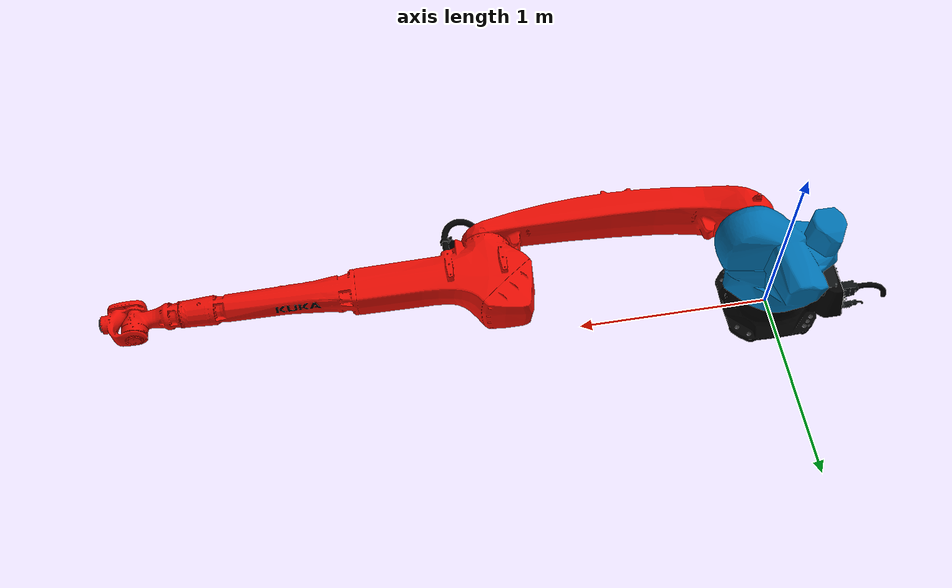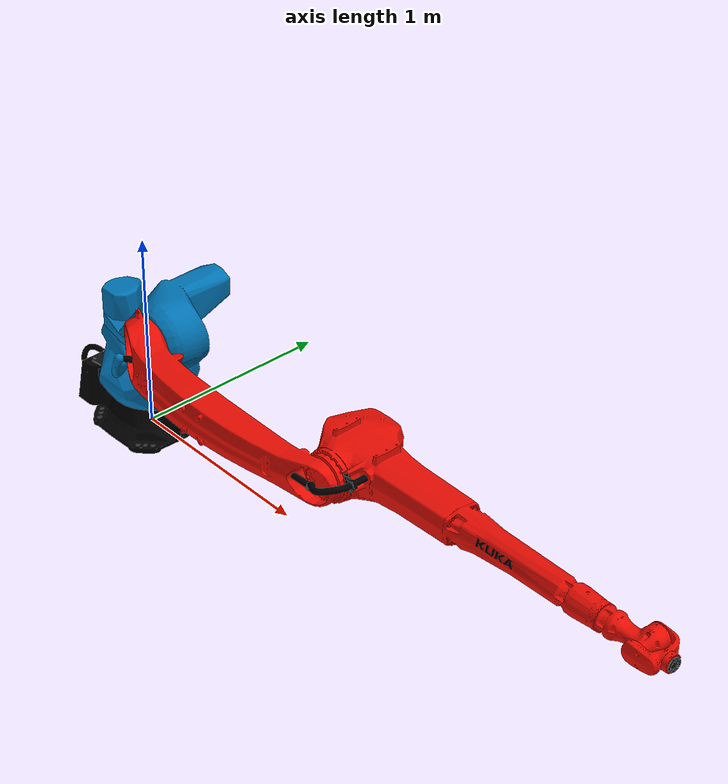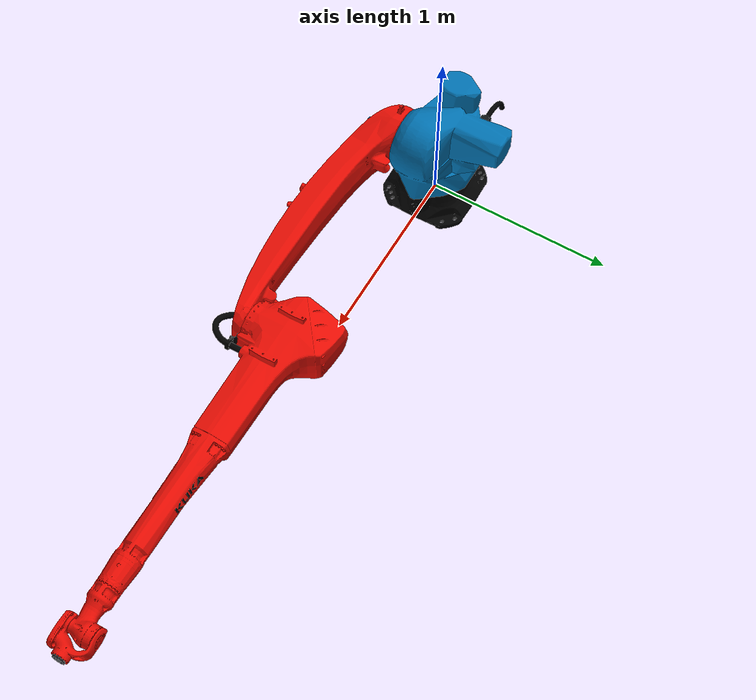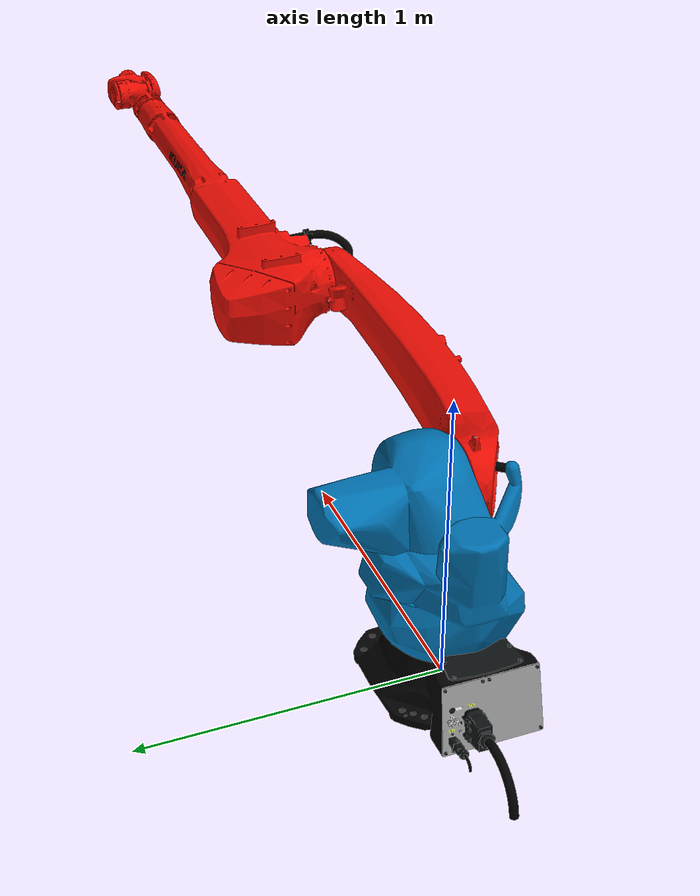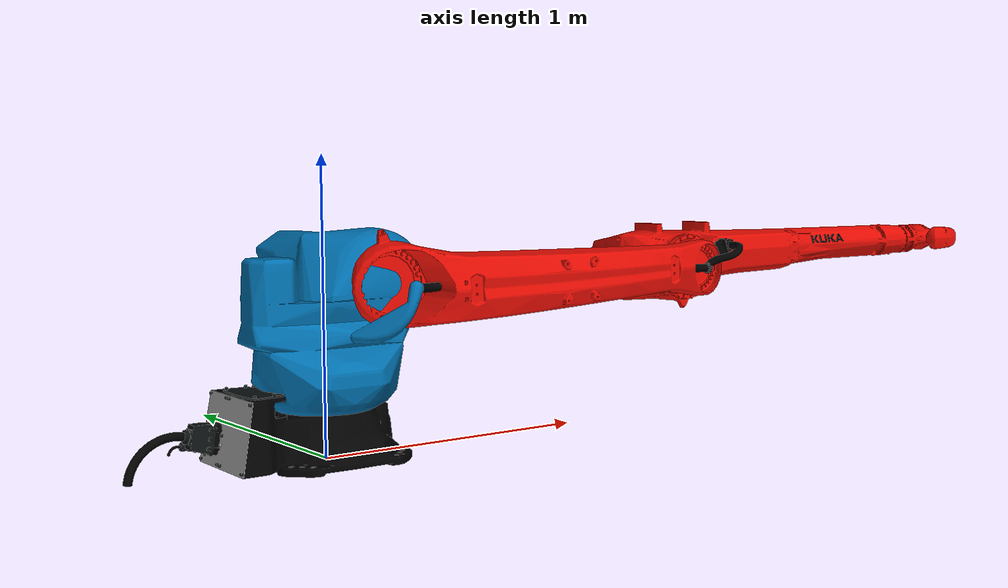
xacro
<?xml version="1.0" encoding="UTF-8"?>
<robot xmlns:xacro="http://ros.org/wiki/xacro" name="kr20_r3100">
  <!-- Import urdf file  -->
  <xacro:include filename="$(find kuka_iontec_support)/urdf/kr20_r3100_macro.xacro"/>
  <xacro:include filename="$(find kuka_iontec_support)/urdf/kr_iontec_ros2_control_macro.xacro"/>
  <!-- Read additional arguments  -->
  <xacro:arg name="driver_version" default="rsi_only"/>
  <xacro:arg name="mode" default="hardware"/>
  <xacro:arg name="gpio_config" default=""/>
  <xacro:arg name="roundtrip_time" default="0"/>
  <xacro:arg name="client_ip" default="0.0.0.0"/>
  <xacro:arg name="client_port" default="59152"/>
  <xacro:arg name="mxa_client_port" default="1337"/>
  <xacro:arg name="controller_ip" default="0.0.0.0"/>
  <xacro:arg name="verify_robot_model" default="true"/>
  <xacro:arg name="prefix" default=""/>
  <xacro:arg name="x" default="0"/>
  <xacro:arg name="y" default="0"/>
  <xacro:arg name="z" default="0"/>
  <xacro:arg name="roll" default="0"/>
  <xacro:arg name="pitch" default="0"/>
  <xacro:arg name="yaw" default="0"/>
  <xacro:arg name="rsi_xml_config_file" default=""/>
  <xacro:kuka_iontec_ros2_control name="$(arg prefix)kr20_r3100" driver_version="$(arg driver_version)" client_ip="$(arg client_ip)" client_port="$(arg client_port)" mxa_client_port="$(arg mxa_client_port)" controller_ip="$(arg controller_ip)" prefix="$(arg prefix)" mode="$(arg mode)" gpio_config="$(arg gpio_config)" roundtrip_time="$(arg roundtrip_time)" verify_robot_model="$(arg verify_robot_model)" rsi_xml_config_file="$(arg rsi_xml_config_file)">
    <ext_axes_ros2_control_joints/>
  </xacro:kuka_iontec_ros2_control>
  <!-- world link -->
  <link name="world"/>
  <!-- robot links, joints -->
  <xacro:kuka_kr20_r3100_robot prefix="$(arg prefix)" package_name="kuka_iontec_support"/>
  <!-- default world - base_link joint -->
  <joint name="$(arg prefix)world-base_link" type="fixed">
    <parent link="world"/>
    <child link="$(arg prefix)base_link"/>
    <origin xyz="$(arg x) $(arg y) $(arg z)" rpy="$(arg roll) $(arg pitch) $(arg yaw)"/>
  </joint>
</robot>

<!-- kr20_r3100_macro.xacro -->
<robot xmlns:xacro="http://www.ros.org/wiki/xacro" name="kr20_r3100">
  <xacro:macro name="kuka_kr20_r3100_robot" params="prefix package_name">
    <link name="${prefix}base"/>
    <link name="${prefix}base_link">
      <collision>
        <geometry>
          <mesh filename="package://${package_name}/meshes/kr20_r3100/collision/base_link.stl"/>
        </geometry>
        <origin rpy="0.0 -0.0 0.0" xyz="0.0 0.0 0.0"/>
      </collision>
      <inertial>
        <inertia ixx="3.21771450042138" ixy="0.0" ixz="0.0" iyy="2.20944166758376" iyz="0.0" izz="3.52194780966785"/>
        <mass value="1.1102E2"/>
        <origin rpy="-0.09552224276473971 0.005165689953881887 1.5692512343174831" xyz="-0.0353407754502021 3.24880558618159E-4 0.169880117603822"/>
      </inertial>
      <visual>
        <geometry>
          <mesh filename="package://${package_name}/meshes/kr20_r3100/visual/base_link.dae"/>
        </geometry>
        <origin rpy="0.0 -0.0 0.0" xyz="0.0 0.0 0.0"/>
      </visual>
    </link>
    <link name="${prefix}flange"/>
    <link name="${prefix}link_1">
      <collision>
        <geometry>
          <mesh filename="package://${package_name}/meshes/kr20_r3100/collision/link_1.stl"/>
        </geometry>
        <origin rpy="-3.141592653589793 0.0 -0.0" xyz="0.0 -2.890166445987754e-17 0.23600000000000002"/>
      </collision>
      <inertial>
        <inertia ixx="5.24555012484584" ixy="0.0" ixz="0.0" iyy="7.5101448256266" iyz="0.0" izz="8.88415818665863"/>
        <mass value="1.72735E2"/>
        <origin rpy="-0.9012026077142694 -0.880518526999153 2.770605684460564" xyz="0.0382984455958549 -0.0308864897096709 -0.235396902770139"/>
      </inertial>
      <visual>
        <geometry>
          <mesh filename="package://${package_name}/meshes/kr20_r3100/visual/link_1.dae"/>
        </geometry>
        <origin rpy="-3.141592653589793 0.0 -0.0" xyz="0.0 -2.890166445987754e-17 0.23600000000000002"/>
      </visual>
    </link>
    <link name="${prefix}link_2">
      <collision>
        <geometry>
          <mesh filename="package://${package_name}/meshes/kr20_r3100/collision/link_2.stl"/>
        </geometry>
        <origin rpy="1.5707963267948968 -0.0 1.5707963267948966" xyz="-0.5750000000000001 -0.175 0.05400000000000006"/>
      </collision>
      <inertial>
        <inertia ixx="34.4473098933026" ixy="0.0" ixz="0.0" iyy="1.82338350185872" iyz="0.0" izz="34.9457113145669"/>
        <mass value="1.3116E2"/>
        <origin rpy="2.1123221767766847 -1.457644221591364 -0.5475882223919419" xyz="0.482423909728576 0.0018571058249466298 -0.115943671851174"/>
      </inertial>
      <visual>
        <geometry>
          <mesh filename="package://${package_name}/meshes/kr20_r3100/visual/link_2.dae"/>
        </geometry>
        <origin rpy="1.5707963267948968 -0.0 1.5707963267948966" xyz="-0.5750000000000001 -0.175 0.05400000000000006"/>
      </visual>
    </link>
    <link name="${prefix}link_3">
      <collision>
        <geometry>
          <mesh filename="package://${package_name}/meshes/kr20_r3100/collision/link_3.stl"/>
        </geometry>
        <origin rpy="1.5707963267948968 -0.0 -0.0" xyz="-0.1750000000000001 1.865 0.15150000000000005"/>
      </collision>
      <inertial>
        <inertia ixx="21.0138182447424" ixy="0.0" ixz="0.0" iyy="1.42713730635369" iyz="0.0" izz="21.4082758516886"/>
        <mass value="1.09122E2"/>
        <origin rpy="2.9799051458597847 -1.5360013046882948 1.6956826094931574" xyz="0.288467492348014 -0.0242848371547442 0.140703183042833"/>
      </inertial>
      <visual>
        <geometry>
          <mesh filename="package://${package_name}/meshes/kr20_r3100/visual/link_3.dae"/>
        </geometry>
        <origin rpy="1.5707963267948968 -0.0 -0.0" xyz="-0.1750000000000001 1.865 0.15150000000000005"/>
      </visual>
    </link>
    <link name="${prefix}link_4">
      <collision>
        <geometry>
          <mesh filename="package://${package_name}/meshes/kr20_r3100/collision/link_4.stl"/>
        </geometry>
        <origin rpy="1.8369701987210297e-16 1.5707963267948966 0.0" xyz="-1.915 -2.703579927729857e-17 1.5819999999999999"/>
      </collision>
      <inertial>
        <inertia ixx="0.0146915954726083" ixy="0.0" ixz="0.0" iyy="0.100896595833333" iyz="0.0" izz="0.103792630807015"/>
        <mass value="8.127E0"/>
        <origin rpy="1.5696433459928723 -1.4878746668638436 -1.567130148169699" xyz="-2.15014352897747E-5 0.0072702582490833 -0.10676462698553"/>
      </inertial>
      <visual>
        <geometry>
          <mesh filename="package://${package_name}/meshes/kr20_r3100/visual/link_4.dae"/>
        </geometry>
        <origin rpy="1.8369701987210297e-16 1.5707963267948966 0.0" xyz="-1.915 -2.703579927729857e-17 1.5819999999999999"/>
      </visual>
    </link>
    <link name="${prefix}link_5">
      <collision>
        <geometry>
          <mesh filename="package://${package_name}/meshes/kr20_r3100/collision/link_5.stl"/>
        </geometry>
        <origin rpy="1.5707963267948968 -3.749399456654644e-33 -6.123233995736766e-17" xyz="-1.8099999999999998 1.915 -0.07280000000000006"/>
      </collision>
      <inertial>
        <inertia ixx="0.0142801579471031" ixy="0.0" ixz="0.0" iyy="0.0261605120546231" iyz="0.0" izz="0.0345946409398644"/>
        <mass value="5.671E0"/>
        <origin rpy="-1.5705255565254084 -1.0017386119353666 3.1414634653101516" xyz="0.037350207551225506 -1.1626542056074299E-6 -0.0546807915298889"/>
      </inertial>
      <visual>
        <geometry>
          <mesh filename="package://${package_name}/meshes/kr20_r3100/visual/link_5.dae"/>
        </geometry>
        <origin rpy="1.5707963267948968 -3.749399456654644e-33 -6.123233995736766e-17" xyz="-1.8099999999999998 1.915 -0.07280000000000006"/>
      </visual>
    </link>
    <link name="${prefix}link_6">
      <collision>
        <geometry>
          <mesh filename="package://${package_name}/meshes/kr20_r3100/collision/link_6.stl"/>
        </geometry>
        <origin rpy="1.2246467991473532e-16 1.5707963267948966 0.0" xyz="-1.9150000000000003 -1.6670676672005423e-16 1.948"/>
      </collision>
      <inertial>
        <inertia ixx="3.89E-4" ixy="0.0" ixz="0.0" iyy="3.89E-4" iyz="0.0" izz="4.27E-4"/>
        <mass value="8.3E-1"/>
        <origin rpy="0.0 -0.0 0.0" xyz="0.0 0.0 0.011"/>
      </inertial>
      <visual>
        <geometry>
          <mesh filename="package://${package_name}/meshes/kr20_r3100/visual/link_6.dae"/>
        </geometry>
        <origin rpy="1.2246467991473532e-16 1.5707963267948966 0.0" xyz="-1.9150000000000003 -1.6670676672005423e-16 1.948"/>
      </visual>
    </link>
    <link name="${prefix}tool0"/>
    <joint name="${prefix}base_link-base" type="fixed">
      <child link="${prefix}base"/>
      <parent link="${prefix}base_link"/>
    </joint>
    <joint name="${prefix}joint_1" type="revolute">
      <axis xyz="0.0 0.0 1.0"/>
      <child link="${prefix}link_1"/>
      <limit effort="5.64E3" lower="-3.2288591125E0" upper="3.2288591125E0" velocity="3.14159265358979E0"/>
      <origin rpy="3.141592653589793 -0.0 0.0" xyz="0.0 0.0 0.23600000000000002"/>
      <parent link="${prefix}base_link"/>
    </joint>
    <joint name="${prefix}joint_2" type="revolute">
      <axis xyz="0.0 0.0 1.0"/>
      <child link="${prefix}link_2"/>
      <limit effort="4.49386605527815E3" lower="-3.0543261875E0" upper="1.04719755E0" velocity="2.87979326579064E0"/>
      <origin rpy="1.5707963267948966 -0.0 0.0" xyz="0.17500000000000002 0.054 -0.339"/>
      <parent link="${prefix}link_1"/>
    </joint>
    <joint name="${prefix}joint_3" type="revolute">
      <axis xyz="0.0 0.0 1.0"/>
      <child link="${prefix}link_3"/>
      <limit effort="1.35017474425809E3" lower="-2.0943951E0" upper="2.967059725E0" velocity="2.79252680319093E0"/>
      <origin rpy="0.0 -0.0 0.0" xyz="1.29 0.0 -0.0975"/>
      <parent link="${prefix}link_2"/>
    </joint>
    <joint name="${prefix}joint_4" type="revolute">
      <axis xyz="0.0 0.0 1.0"/>
      <child link="${prefix}link_4"/>
      <limit effort="2.21816223612223E2" lower="-6.108652375E0" upper="6.108652375E0" velocity="6.28318530717959E0"/>
      <origin rpy="1.5707963267948966 -0.0 -1.5707963267948966" xyz="1.407 -0.05 0.1515"/>
      <parent link="${prefix}link_3"/>
    </joint>
    <joint name="${prefix}joint_5" type="revolute">
      <axis xyz="0.0 0.0 1.0"/>
      <child link="${prefix}link_5"/>
      <limit effort="2.10559213884437E2" lower="-2.268928025E0" upper="2.268928025E0" velocity="6.28318530717959E0"/>
      <origin rpy="0.0 1.5707963267948966 1.5707963267948966" xyz="0.0 0.0728 -0.228"/>
      <parent link="${prefix}link_4"/>
    </joint>
    <joint name="${prefix}joint_6" type="revolute">
      <axis xyz="0.0 0.0 1.0"/>
      <child link="${prefix}link_6"/>
      <limit effort="9.252792E1" lower="-6.108652375E0" upper="6.108652375E0" velocity="1.09955742875643E1"/>
      <origin rpy="1.5707963267948966 -0.0 -1.5707963267948966" xyz="0.138 0.0 -0.0728"/>
      <parent link="${prefix}link_5"/>
    </joint>
    <joint name="${prefix}link6-flange" type="fixed">
      <child link="${prefix}flange"/>
      <origin rpy="0.0 1.5707963267948966 0.0" xyz="0.0 0.0 -0.015"/>
      <parent link="${prefix}link_6"/>
    </joint>
    <joint name="${prefix}link6-tool0" type="fixed">
      <child link="${prefix}tool0"/>
      <origin rpy="3.141592653589793 1.2246467991473532E-16 3.141592653589793" xyz="0.0 0.0 -0.015"/>
      <parent link="${prefix}link_6"/>
    </joint>
  </xacro:macro>
</robot>
